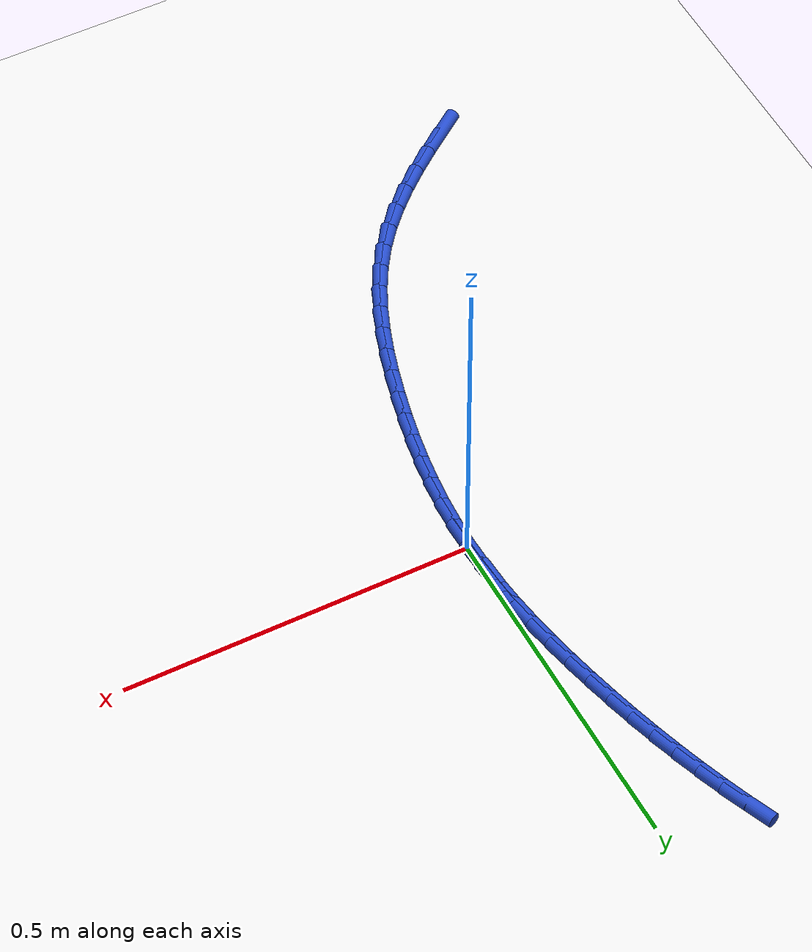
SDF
<sdf version="1.6">
 <world name="default">
  <model name="ground_plane">
   <static>1</static>
   <link name="link">
    <collision name="collision">
     <geometry><plane><normal>0 0 1</normal><size>100 100</size></plane></geometry>
     <surface><friction><ode><mu>100</mu><mu2>50</mu2></ode></friction></surface>
    </collision>
    <visual name="visual">
     <cast_shadows>0</cast_shadows>
     <geometry><plane><normal>0 0 1</normal><size>100 100</size></plane></geometry>
     <material>
      <script><uri>file://media/materials/scripts/gazebo.material</uri><name>Gazebo/WhiteGlow</name></script>
     </material>
    </visual>
   </link>
  </model>
  <model name="line">
   <link name="link_0">
    <pose>-1.734723475976807e-18 -5.551115123125783e-17 0.01 0 1.57 -1.5428531095755291</pose>
    <collision name="collision">
     <geometry><cylinder><radius>0.01</radius><length>0.08</length></cylinder></geometry>
    </collision>
    <visual name="visual">
     <material>
      <script><name>Gazebo/Blue</name><uri>file://media/materials/scripts/gazebo.material</uri></script>
     </material>
     <geometry><cylinder><radius>0.01</radius><length>0.08</length></cylinder></geometry>
    </visual>
   </link>
   <link name="link_1">
    <pose>-0.0010769794216068187 0.03853167973899167 0.01 0 1.57 -1.4999491516372496</pose>
    <collision name="collision">
     <geometry><cylinder><radius>0.01</radius><length>0.08</length></cylinder></geometry>
    </collision>
    <visual name="visual">
     <material>
      <script><name>Gazebo/Blue</name><uri>file://media/materials/scripts/gazebo.material</uri></script>
     </material>
     <geometry><cylinder><radius>0.01</radius><length>0.08</length></cylinder></geometry>
    </visual>
   </link>
   <link name="link_2">
    <pose>-0.0038104905680952893 0.07705031017915327 0.01 0 1.57 -1.4612847658015455</pose>
    <collision name="collision">
     <geometry><cylinder><radius>0.01</radius><length>0.08</length></cylinder></geometry>
    </collision>
    <visual name="visual">
     <material>
      <script><name>Gazebo/Blue</name><uri>file://media/materials/scripts/gazebo.material</uri></script>
     </material>
     <geometry><cylinder><radius>0.01</radius><length>0.08</length></cylinder></geometry>
    </visual>
   </link>
   <link name="link_3">
    <pose>-0.008040696042351605 0.1155237029076431 0.01 0 1.57 -1.4268089031461204</pose>
    <collision name="collision">
     <geometry><cylinder><radius>0.01</radius><length>0.08</length></cylinder></geometry>
    </collision>
    <visual name="visual">
     <material>
      <script><name>Gazebo/Blue</name><uri>file://media/materials/scripts/gazebo.material</uri></script>
     </material>
     <geometry><cylinder><radius>0.01</radius><length>0.08</length></cylinder></geometry>
    </visual>
   </link>
   <link name="link_4">
    <pose>-0.013607758447261944 0.15391966951161945 0.01 0 1.57 -1.3964365449632792</pose>
    <collision name="collision">
     <geometry><cylinder><radius>0.01</radius><length>0.08</length></cylinder></geometry>
    </collision>
    <visual name="visual">
     <material>
      <script><name>Gazebo/Blue</name><uri>file://media/materials/scripts/gazebo.material</uri></script>
     </material>
     <geometry><cylinder><radius>0.01</radius><length>0.08</length></cylinder></geometry>
    </visual>
   </link>
   <link name="link_5">
    <pose>-0.020351840385712486 0.19220602157824074 0.01 0 1.57 -1.3700666504741452</pose>
    <collision name="collision">
     <geometry><cylinder><radius>0.01</radius><length>0.08</length></cylinder></geometry>
    </collision>
    <visual name="visual">
     <material>
      <script><name>Gazebo/Blue</name><uri>file://media/materials/scripts/gazebo.material</uri></script>
     </material>
     <geometry><cylinder><radius>0.01</radius><length>0.08</length></cylinder></geometry>
    </visual>
   </link>
   <link name="link_6">
    <pose>-0.028113104460589435 0.23035057069466533 0.01 0 1.57 -1.3475968002136869</pose>
    <collision name="collision">
     <geometry><cylinder><radius>0.01</radius><length>0.08</length></cylinder></geometry>
    </collision>
    <visual name="visual">
     <material>
      <script><name>Gazebo/Blue</name><uri>file://media/materials/scripts/gazebo.material</uri></script>
     </material>
     <geometry><cylinder><radius>0.01</radius><length>0.08</length></cylinder></geometry>
    </visual>
   </link>
   <link name="link_7">
    <pose>-0.036731713274778956 0.2683211284480515 0.01 0 1.57 -1.3282644170436997</pose>
    <collision name="collision">
     <geometry><cylinder><radius>0.01</radius><length>0.08</length></cylinder></geometry>
    </collision>
    <visual name="visual">
     <material>
      <script><name>Gazebo/Blue</name><uri>file://media/materials/scripts/gazebo.material</uri></script>
     </material>
     <geometry><cylinder><radius>0.01</radius><length>0.08</length></cylinder></geometry>
    </visual>
   </link>
   <link name="link_8">
    <pose>-0.046075174904024595 0.3060874564566931 0.01 0 1.57 -1.309001900247057</pose>
    <collision name="collision">
     <geometry><cylinder><radius>0.01</radius><length>0.08</length></cylinder></geometry>
    </collision>
    <visual name="visual">
     <material>
      <script><name>Gazebo/Blue</name><uri>file://media/materials/scripts/gazebo.material</uri></script>
     </material>
     <geometry><cylinder><radius>0.01</radius><length>0.08</length></cylinder></geometry>
    </visual>
   </link>
   <link name="link_9">
    <pose>-0.056133956291575575 0.34362808465023437 0.01 0 1.57 -1.2889520934286058</pose>
    <collision name="collision">
     <geometry><cylinder><radius>0.01</radius><length>0.08</length></cylinder></geometry>
    </collision>
    <visual name="visual">
     <material>
      <script><name>Gazebo/Blue</name><uri>file://media/materials/scripts/gazebo.material</uri></script>
     </material>
     <geometry><cylinder><radius>0.01</radius><length>0.08</length></cylinder></geometry>
    </visual>
   </link>
   <link name="link_10">
    <pose>-0.06693306934498469 0.38092400639189467 0.01 0 1.57 -1.2681109066922311</pose>
    <collision name="collision">
     <geometry><cylinder><radius>0.01</radius><length>0.08</length></cylinder></geometry>
    </collision>
    <visual name="visual">
     <material>
      <script><name>Gazebo/Blue</name><uri>file://media/materials/scripts/gazebo.material</uri></script>
     </material>
     <geometry><cylinder><radius>0.01</radius><length>0.08</length></cylinder></geometry>
    </visual>
   </link>
   <link name="link_11">
    <pose>-0.07849752779473321 0.41795621517488846 0.01 0 1.57 -1.2464768141689995</pose>
    <collision name="collision">
     <geometry><cylinder><radius>0.01</radius><length>0.08</length></cylinder></geometry>
    </collision>
    <visual name="visual">
     <material>
      <script><name>Gazebo/Blue</name><uri>file://media/materials/scripts/gazebo.material</uri></script>
     </material>
     <geometry><cylinder><radius>0.01</radius><length>0.08</length></cylinder></geometry>
    </visual>
   </link>
   <link name="link_12">
    <pose>-0.09085234537130234 0.45470570449242975 0.01 0 1.57 -1.2240512157923236</pose>
    <collision name="collision">
     <geometry><cylinder><radius>0.01</radius><length>0.08</length></cylinder></geometry>
    </collision>
    <visual name="visual">
     <material>
      <script><name>Gazebo/Blue</name><uri>file://media/materials/scripts/gazebo.material</uri></script>
     </material>
     <geometry><cylinder><radius>0.01</radius><length>0.08</length></cylinder></geometry>
    </visual>
   </link>
   <link name="link_13">
    <pose>-0.10402253580517332 0.49115346783773256 0.01 0 1.57 -1.200838851809362</pose>
    <collision name="collision">
     <geometry><cylinder><radius>0.01</radius><length>0.08</length></cylinder></geometry>
    </collision>
    <visual name="visual">
     <material>
      <script><name>Gazebo/Blue</name><uri>file://media/materials/scripts/gazebo.material</uri></script>
     </material>
     <geometry><cylinder><radius>0.01</radius><length>0.08</length></cylinder></geometry>
    </visual>
   </link>
   <link name="link_14">
    <pose>-0.11803311282682744 0.5272804987040115 0.01 0 1.57 -1.1768482164903336</pose>
    <collision name="collision">
     <geometry><cylinder><radius>0.01</radius><length>0.08</length></cylinder></geometry>
    </collision>
    <visual name="visual">
     <material>
      <script><name>Gazebo/Blue</name><uri>file://media/materials/scripts/gazebo.material</uri></script>
     </material>
     <geometry><cylinder><radius>0.01</radius><length>0.08</length></cylinder></geometry>
    </visual>
   </link>
   <link name="link_210">
    <pose>-0.3173743984270515 -0.677560374581118 0.01 0 1.57 0.6370769295347639</pose>
    <collision name="collision">
     <geometry><cylinder><radius>0.01</radius><length>0.08</length></cylinder></geometry>
    </collision>
    <visual name="visual">
     <material>
      <script><name>Gazebo/Blue</name><uri>file://media/materials/scripts/gazebo.material</uri></script>
     </material>
     <geometry><cylinder><radius>0.01</radius><length>0.08</length></cylinder></geometry>
    </visual>
   </link>
   <link name="link_211">
    <pose>-0.28485854784746767 -0.653498313015466 0.01 0 1.57 0.6665090578741486</pose>
    <collision name="collision">
     <geometry><cylinder><radius>0.01</radius><length>0.08</length></cylinder></geometry>
    </collision>
    <visual name="visual">
     <material>
      <script><name>Gazebo/Blue</name><uri>file://media/materials/scripts/gazebo.material</uri></script>
     </material>
     <geometry><cylinder><radius>0.01</radius><length>0.08</length></cylinder></geometry>
    </visual>
   </link>
   <link name="link_212">
    <pose>-0.25329414867054506 -0.6286701438141538 0.01 0 1.57 0.7065534348303293</pose>
    <collision name="collision">
     <geometry><cylinder><radius>0.01</radius><length>0.08</length></cylinder></geometry>
    </collision>
    <visual name="visual">
     <material>
      <script><name>Gazebo/Blue</name><uri>file://media/materials/scripts/gazebo.material</uri></script>
     </material>
     <geometry><cylinder><radius>0.01</radius><length>0.08</length></cylinder></geometry>
    </visual>
   </link>
   <link name="link_213">
    <pose>-0.2230433503346941 -0.6028494692853206 0.01 0 1.57 0.7577960618708889</pose>
    <collision name="collision">
     <geometry><cylinder><radius>0.01</radius><length>0.08</length></cylinder></geometry>
    </collision>
    <visual name="visual">
     <material>
      <script><name>Gazebo/Blue</name><uri>file://media/materials/scripts/gazebo.material</uri></script>
     </material>
     <geometry><cylinder><radius>0.01</radius><length>0.08</length></cylinder></geometry>
    </visual>
   </link>
   <link name="link_214">
    <pose>-0.19446830227832496 -0.5758098917371056 0.01 0 1.57 0.8207824828850285</pose>
    <collision name="collision">
     <geometry><cylinder><radius>0.01</radius><length>0.08</length></cylinder></geometry>
    </collision>
    <visual name="visual">
     <material>
      <script><name>Gazebo/Blue</name><uri>file://media/materials/scripts/gazebo.material</uri></script>
     </material>
     <geometry><cylinder><radius>0.01</radius><length>0.08</length></cylinder></geometry>
    </visual>
   </link>
   <link name="link_215">
    <pose>-0.16793115393984728 -0.5473250134776477 0.01 0 1.57 0.8958145019916132</pose>
    <collision name="collision">
     <geometry><cylinder><radius>0.01</radius><length>0.08</length></cylinder></geometry>
    </collision>
    <visual name="visual">
     <material>
      <script><name>Gazebo/Blue</name><uri>file://media/materials/scripts/gazebo.material</uri></script>
     </material>
     <geometry><cylinder><radius>0.01</radius><length>0.08</length></cylinder></geometry>
    </visual>
   </link>
   <link name="link_216">
    <pose>-0.1437940070263611 -0.5171684742854894 0.01 0 1.57 0.9785284295838163</pose>
    <collision name="collision">
     <geometry><cylinder><radius>0.01</radius><length>0.08</length></cylinder></geometry>
    </collision>
    <visual name="visual">
     <material>
      <script><name>Gazebo/Blue</name><uri>file://media/materials/scripts/gazebo.material</uri></script>
     </material>
     <geometry><cylinder><radius>0.01</radius><length>0.08</length></cylinder></geometry>
    </visual>
   </link>
   <link name="link_217">
    <pose>-0.12229285756017205 -0.48521291039503645 0.01 0 1.57 1.0550883536119935</pose>
    <collision name="collision">
     <geometry><cylinder><radius>0.01</radius><length>0.08</length></cylinder></geometry>
    </collision>
    <visual name="visual">
     <material>
      <script><name>Gazebo/Blue</name><uri>file://media/materials/scripts/gazebo.material</uri></script>
     </material>
     <geometry><cylinder><radius>0.01</radius><length>0.08</length></cylinder></geometry>
    </visual>
   </link>
   <link name="link_218">
    <pose>-0.10326389002069558 -0.45164482117720073 0.01 0 1.57 1.1225259902009348</pose>
    <collision name="collision">
     <geometry><cylinder><radius>0.01</radius><length>0.08</length></cylinder></geometry>
    </collision>
    <visual name="visual">
     <material>
      <script><name>Gazebo/Blue</name><uri>file://media/materials/scripts/gazebo.material</uri></script>
     </material>
     <geometry><cylinder><radius>0.01</radius><length>0.08</length></cylinder></geometry>
    </visual>
   </link>
   <link name="link_219">
    <pose>-0.08646423923299518 -0.41671276217134584 0.01 0 1.57 1.1808981826212652</pose>
    <collision name="collision">
     <geometry><cylinder><radius>0.01</radius><length>0.08</length></cylinder></geometry>
    </collision>
    <visual name="visual">
     <material>
      <script><name>Gazebo/Blue</name><uri>file://media/materials/scripts/gazebo.material</uri></script>
     </material>
     <geometry><cylinder><radius>0.01</radius><length>0.08</length></cylinder></geometry>
    </visual>
   </link>
   <link name="link_220">
    <pose>-0.07165104002213547 -0.3806652889168371 0.01 0 1.57 1.230515803056632</pose>
    <collision name="collision">
     <geometry><cylinder><radius>0.01</radius><length>0.08</length></cylinder></geometry>
    </collision>
    <visual name="visual">
     <material>
      <script><name>Gazebo/Blue</name><uri>file://media/materials/scripts/gazebo.material</uri></script>
     </material>
     <geometry><cylinder><radius>0.01</radius><length>0.08</length></cylinder></geometry>
    </visual>
   </link>
   <link name="link_221">
    <pose>-0.05858142721317985 -0.34375095695303803 0.01 0 1.57 1.2718012325412222</pose>
    <collision name="collision">
     <geometry><cylinder><radius>0.01</radius><length>0.08</length></cylinder></geometry>
    </collision>
    <visual name="visual">
     <material>
      <script><name>Gazebo/Blue</name><uri>file://media/materials/scripts/gazebo.material</uri></script>
     </material>
     <geometry><cylinder><radius>0.01</radius><length>0.08</length></cylinder></geometry>
    </visual>
   </link>
   <link name="link_222">
    <pose>-0.04701253563119205 -0.30621832181931213 0.01 0 1.57 1.3051824308268634</pose>
    <collision name="collision">
     <geometry><cylinder><radius>0.01</radius><length>0.08</length></cylinder></geometry>
    </collision>
    <visual name="visual">
     <material>
      <script><name>Gazebo/Blue</name><uri>file://media/materials/scripts/gazebo.material</uri></script>
     </material>
     <geometry><cylinder><radius>0.01</radius><length>0.08</length></cylinder></geometry>
    </visual>
   </link>
   <link name="link_223">
    <pose>-0.036701503605748885 -0.2683159367604124 0.01 0 1.57 1.332929552495422</pose>
    <collision name="collision">
     <geometry><cylinder><radius>0.01</radius><length>0.08</length></cylinder></geometry>
    </collision>
    <visual name="visual">
     <material>
      <script><name>Gazebo/Blue</name><uri>file://media/materials/scripts/gazebo.material</uri></script>
     </material>
     <geometry><cylinder><radius>0.01</radius><length>0.08</length></cylinder></geometry>
    </visual>
   </link>
   <link name="link_224">
    <pose>-0.027471880896244482 -0.2302488715645009 0.01 0 1.57 1.3620444744267968</pose>
    <collision name="collision">
     <geometry><cylinder><radius>0.01</radius><length>0.08</length></cylinder></geometry>
    </collision>
    <visual name="visual">
     <material>
      <script><name>Gazebo/Blue</name><uri>file://media/materials/scripts/gazebo.material</uri></script>
     </material>
     <geometry><cylinder><radius>0.01</radius><length>0.08</length></cylinder></geometry>
    </visual>
   </link>
   <link name="link_225">
    <pose>-0.019383601185584593 -0.19206742160656987 0.01 0 1.57 1.3941197454507503</pose>
    <collision name="collision">
     <geometry><cylinder><radius>0.01</radius><length>0.08</length></cylinder></geometry>
    </collision>
    <visual name="visual">
     <material>
      <script><name>Gazebo/Blue</name><uri>file://media/materials/scripts/gazebo.material</uri></script>
     </material>
     <geometry><cylinder><radius>0.01</radius><length>0.08</length></cylinder></geometry>
    </visual>
   </link>
   <link name="link_226">
    <pose>-0.012549168827627714 -0.1537874611612873 0.01 0 1.57 1.429213250770027</pose>
    <collision name="collision">
     <geometry><cylinder><radius>0.01</radius><length>0.08</length></cylinder></geometry>
    </collision>
    <visual name="visual">
     <material>
      <script><name>Gazebo/Blue</name><uri>file://media/materials/scripts/gazebo.material</uri></script>
     </material>
     <geometry><cylinder><radius>0.01</radius><length>0.08</length></cylinder></geometry>
    </visual>
   </link>
   <link name="link_227">
    <pose>-0.007081088176232324 -0.1154248645033211 0.01 0 1.57 1.4673601101666052</pose>
    <collision name="collision">
     <geometry><cylinder><radius>0.01</radius><length>0.08</length></cylinder></geometry>
    </collision>
    <visual name="visual">
     <material>
      <script><name>Gazebo/Blue</name><uri>file://media/materials/scripts/gazebo.material</uri></script>
     </material>
     <geometry><cylinder><radius>0.01</radius><length>0.08</length></cylinder></geometry>
    </visual>
   </link>
   <link name="link_228">
    <pose>-0.0030918635852568393 -0.07699550590733839 0.01 0 1.57 1.5085626370048266</pose>
    <collision name="collision">
     <geometry><cylinder><radius>0.01</radius><length>0.08</length></cylinder></geometry>
    </collision>
    <visual name="visual">
     <material>
      <script><name>Gazebo/Blue</name><uri>file://media/materials/scripts/gazebo.material</uri></script>
     </material>
     <geometry><cylinder><radius>0.01</radius><length>0.08</length></cylinder></geometry>
    </visual>
   </link>
   <link name="link_229">
    <pose>-0.0006939994085599483 -0.03851525964800907 0.01 0 1.57 1.5527794596932445</pose>
    <collision name="collision">
     <geometry><cylinder><radius>0.01</radius><length>0.08</length></cylinder></geometry>
    </collision>
    <visual name="visual">
     <material>
      <script><name>Gazebo/Blue</name><uri>file://media/materials/scripts/gazebo.material</uri></script>
     </material>
     <geometry><cylinder><radius>0.01</radius><length>0.08</length></cylinder></geometry>
    </visual>
   </link>
   <link name="link_230">
    <pose>-1.9081958235744878e-17 -1.942890293094024e-16 0.01 0 1.57 -1.5416781227031404</pose>
    <collision name="collision">
     <geometry><cylinder><radius>0.01</radius><length>0.08</length></cylinder></geometry>
    </collision>
    <visual name="visual">
     <material>
      <script><name>Gazebo/Blue</name><uri>file://media/materials/scripts/gazebo.material</uri></script>
     </material>
     <geometry><cylinder><radius>0.01</radius><length>0.08</length></cylinder></geometry>
    </visual>
   </link>
   <link name="link_231">
    <pose>-0.001122369713435537 0.038534398762020236 0.01 0 1.57 -1.4917855377671068</pose>
    <collision name="collision">
     <geometry><cylinder><radius>0.01</radius><length>0.08</length></cylinder></geometry>
    </collision>
    <visual name="visual">
     <material>
      <script><name>Gazebo/Blue</name><uri>file://media/materials/scripts/gazebo.material</uri></script>
     </material>
     <geometry><cylinder><radius>0.01</radius><length>0.08</length></cylinder></geometry>
    </visual>
   </link>
   <link name="link_232">
    <pose>-0.004173612902724994 0.07707206236338426 0.01 0 1.57 -1.5166970811915315</pose>
    <collision name="collision">
     <geometry><cylinder><radius>0.01</radius><length>0.08</length></cylinder></geometry>
    </collision>
    <visual name="visual">
     <material>
      <script><name>Gazebo/Blue</name><uri>file://media/materials/scripts/gazebo.material</uri></script>
     </material>
     <geometry><cylinder><radius>0.01</radius><length>0.08</length></cylinder></geometry>
    </visual>
   </link>
  </model>
 </world>
</sdf>
